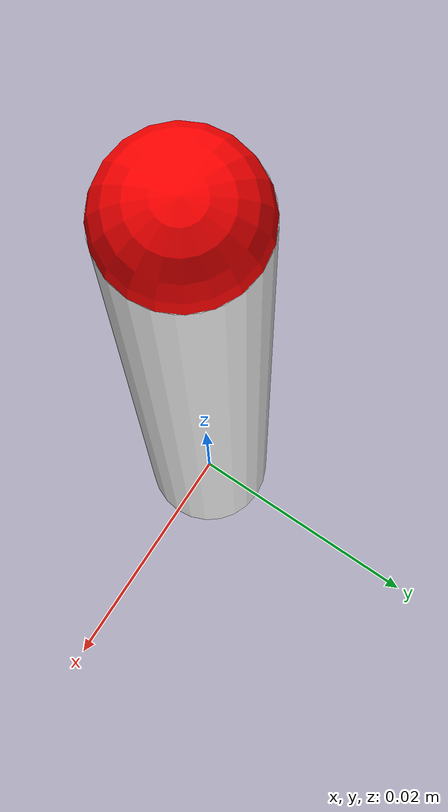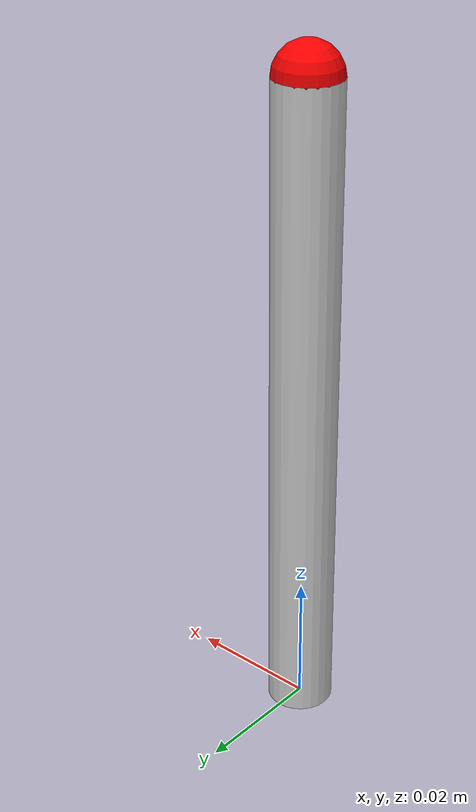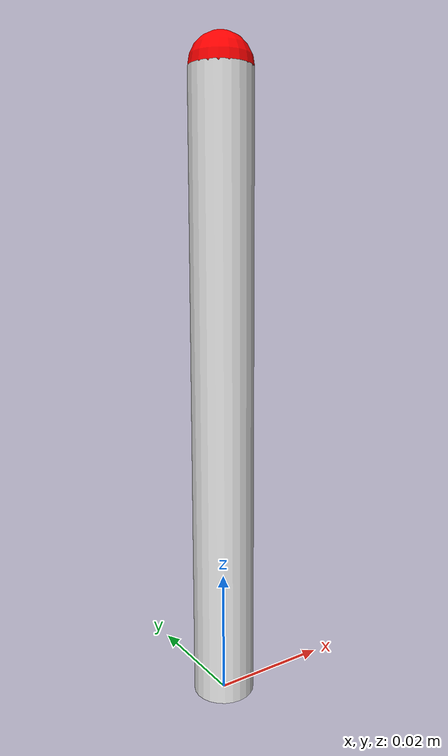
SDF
<?xml version="1.0"?>
<sdf version="1.7">
  <model name="cylinder_gripper">
    <!--
    Axes:
      +Z - pointing toward the top.
    Origin:
      (0, 0, 0) at the center
    -->
    <link name="base_link">
      <inertial>
        <pose>0.0042 0.00000 -0.0059 0 0 0</pose>
        <mass>0.321</mass>
        <inertia>
          <ixx> 0.000446</ixx>
          <ixy> 0.000000</ixy>
          <ixz>-0.000016</ixz>
          <iyy> 0.000515</iyy>
          <iyz> 0.000000</iyz>
          <izz> 0.000415</izz>
        </inertia>
      </inertial>
      <visual name="visual_cylinder">
        <pose>0 0 0.05 0 0 0</pose>
        <geometry>
          <cylinder>
            <radius>0.005</radius>
            <length>0.1</length>
          </cylinder>
        </geometry>
        <material>
          <diffuse>0.9 0.9 0.9 1.0</diffuse>
        </material>
      </visual>
      <visual name="visual_sphere">
        <pose>0 0 0.1 0 0 0</pose>
        <geometry>
          <sphere>
            <radius>5e-3</radius>
          </sphere>
        </geometry>
        <material>
          <diffuse>1.0 0 0 1.0</diffuse>
        </material>
      </visual>
      <collision name="collision_cylinder">
        <pose>0 0 0.05 0 0 0</pose>
        <geometry>
          <cylinder>
            <radius>0.005</radius>
            <length>0.1</length>
          </cylinder>
        </geometry>
      </collision>
      <!-- Add spheres to bottom and top rims to avoid surface/surface
      collision (which causes jumping). -->
      <collision name="collision_sphere">
        <pose>0 0 0.1 0 0 0</pose>
        <geometry>
          <sphere>
            <radius>5e-3</radius>
          </sphere>
        </geometry>
      </collision>
    </link>
    <frame link="base_link" name="finger_point" xyz="0 0 0.1"/>
  </model>
</sdf>
